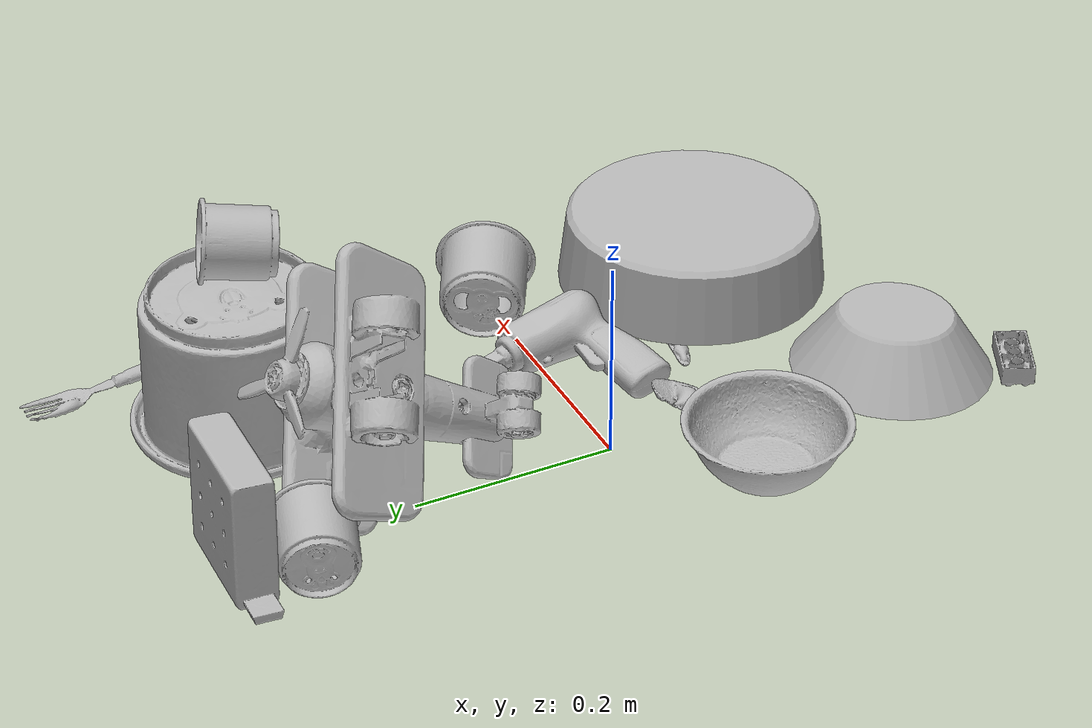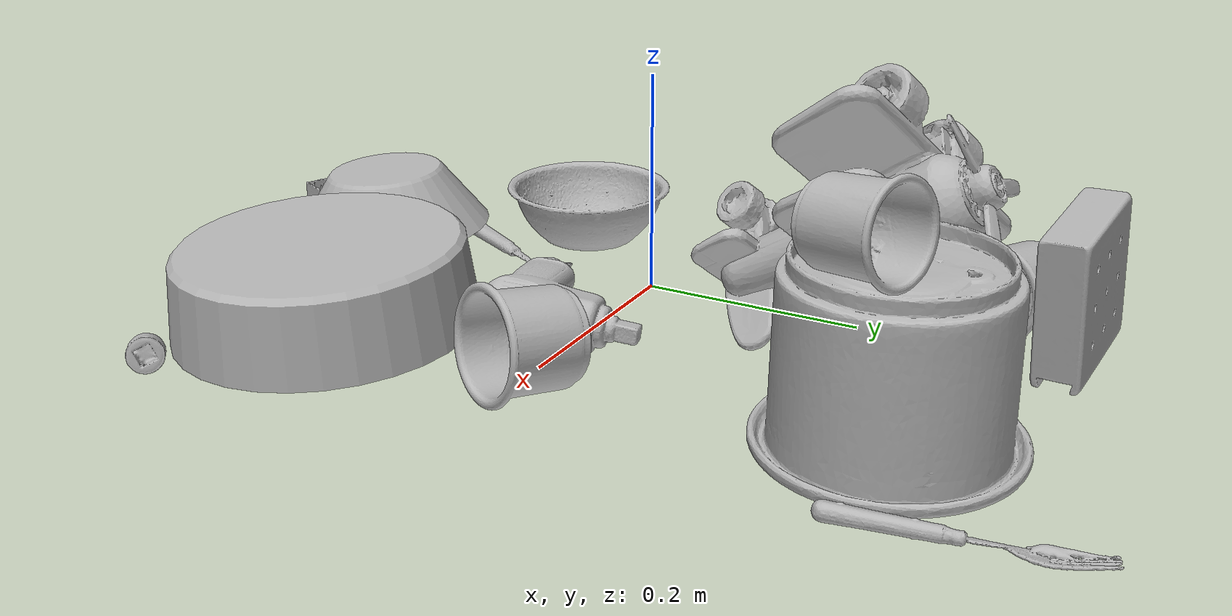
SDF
<sdf version="1.4">
  <world name="default">
    <light name="light1" type="point">
      <pose>0 0 1 0 0 0</pose>
      <diffuse>3 3 3 1</diffuse>
      <specular>3 3 3 1</specular>
    </light>
    <light name="light2" type="point">
      <pose>0 0.5 2 0 0 0</pose>
      <diffuse>1 1 1 1</diffuse>
      <specular>1 1 1 1</specular>
    </light>
    <light name="light3" type="point">
      <pose>0 0.5 2 0 0 0</pose>
      <diffuse>3 3 3 1</diffuse>
      <specular>3 3 3 1</specular>
    </light>
    <scene>
      <ambient>0.7 0.7 0.7</ambient>
    </scene>
    <model name="plate1">
      <link name="link_plate1">
        <collision name="default">
          <geometry>
            <mesh>
              <uri>model://pan_tefal/collision_meshes/collision.obj</uri>
              <scale>1.0 1.0 1.0</scale>
            </mesh>
          </geometry>
          <surface>
            <friction>
              <ode>
                <mu>0.5</mu>
                <mu2>0.5</mu2>
              </ode>
            </friction>
          <contact>
        <ode>
            <max_vel>0</max_vel>
            <min_depth>0.0001</min_depth>
            <kp>1e8</kp>
        </ode>
    </contact></surface>
        </collision>
        <visual name="default">
          <geometry>
            <mesh>
              <uri>model://pan_tefal/visual_meshes/visual.dae</uri>
              <scale>1.0 1.0 1.0</scale>
            </mesh>
          </geometry>
        </visual>
        <inertial>
          <mass>1.2414644956588745</mass>
          <pose>-0.0001800298341549933 3.278589065303095e-05 -0.00851493515074253 0.0008190165640447202 -0.0003301348973125405 -0.33185319573483557</pose>
          <inertia>
            <ixx>0.00856977</ixx>
            <iyy>0.008625018</iyy>
            <izz>0.015775295</izz>
            <ixy>0</ixy>
            <ixz>0</ixz>
            <iyz>0</iyz>
          </inertia>
        </inertial>
      </link>
      <pose>0.21910400688648224 -0.20257362723350525 0.04367988184094429 -3.1163582823512517 -0.03794121906223264 1.908701994379194</pose>
    </model>
    <model name="cup1">
      <link name="link_cup1">
        <collision name="default">
          <geometry>
            <mesh>
              <uri>model://j_cups/collision_meshes/collision.obj</uri>
              <scale>2.0 2.0 2.0</scale>
            </mesh>
          </geometry>
          <surface>
            <friction>
              <ode>
                <mu>0.5</mu>
                <mu2>0.5</mu2>
              </ode>
            </friction>
          <contact>
        <ode>
            <max_vel>0</max_vel>
            <min_depth>0.0001</min_depth>
            <kp>1e8</kp>
        </ode>
    </contact></surface>
        </collision>
        <visual name="default">
          <geometry>
            <mesh>
              <uri>model://j_cups/visual_meshes/visual.dae</uri>
              <scale>2.0 2.0 2.0</scale>
            </mesh>
          </geometry>
        </visual>
        <inertial>
          <mass>0.42814481258392334</mass>
          <pose>0.0012329709716141224 0.0010797895956784487 -0.002695801667869091 0.030303634199985552 0.037580068488308346 0.43868666904956827</pose>
          <inertia>
            <ixx>0.0025146077</ixx>
            <iyy>0.0025407567</iyy>
            <izz>0.0028988216</izz>
            <ixy>0</ixy>
            <ixz>0</ixz>
            <iyz>0</iyz>
          </inertia>
        </inertial>
      </link>
      <pose>0.1942874938249588 0.2934507727622986 0.07599557191133499 -3.1398457345140076 0.006370895939479601 1.2963266036211027</pose>
    </model>
    <model name="silverware1">
      <link name="link_silverware1">
        <collision name="default">
          <geometry>
            <mesh>
              <uri>model://fork/collision_meshes/collision.obj</uri>
              <scale>1.0 1.0 1.0</scale>
            </mesh>
          </geometry>
          <surface>
            <friction>
              <ode>
                <mu>0.5</mu>
                <mu2>0.5</mu2>
              </ode>
            </friction>
          <contact>
        <ode>
            <max_vel>0</max_vel>
            <min_depth>0.0001</min_depth>
            <kp>1e8</kp>
        </ode>
    </contact></surface>
        </collision>
        <visual name="default">
          <geometry>
            <mesh>
              <uri>model://fork/visual_meshes/visual.dae</uri>
              <scale>1.0 1.0 1.0</scale>
            </mesh>
          </geometry>
        </visual>
        <inertial>
          <mass>0.013809523545205593</mass>
          <pose>-0.029570044949650764 0.0004658822435885668 0.00032188615296036005 -0.013551743215227608 -0.010977837587661193 0.014453899243146438</pose>
          <inertia>
            <ixx>4.84102e-07</ixx>
            <iyy>3.6052697e-05</iyy>
            <izz>3.6269223e-05</izz>
            <ixy>0</ixy>
            <ixz>0</ixz>
            <iyz>0</iyz>
          </inertia>
        </inertial>
      </link>
      <pose>0.2978505492210388 0.37737345695495605 0.005694083869457245 -0.17658926670158825 0.025584761891198883 1.7036777321694945</pose>
    </model>
    <model name="silverware2">
      <link name="link_silverware2">
        <collision name="default">
          <geometry>
            <mesh>
              <uri>model://knife/collision_meshes/collision.obj</uri>
              <scale>1.0 1.0 1.0</scale>
            </mesh>
          </geometry>
          <surface>
            <friction>
              <ode>
                <mu>0.5</mu>
                <mu2>0.5</mu2>
              </ode>
            </friction>
          <contact>
        <ode>
            <max_vel>0</max_vel>
            <min_depth>0.0001</min_depth>
            <kp>1e8</kp>
        </ode>
    </contact></surface>
        </collision>
        <visual name="default">
          <geometry>
            <mesh>
              <uri>model://knife/visual_meshes/visual.dae</uri>
              <scale>1.0 1.0 1.0</scale>
            </mesh>
          </geometry>
        </visual>
        <inertial>
          <mass>0.021972408518195152</mass>
          <pose>-0.023785250261425972 0.0015275123296305537 5.0620161346159875e-05 0.07305788583029697 0.01724841890740089 -0.007409824444555058</pose>
          <inertia>
            <ixx>6.2366604e-07</ixx>
            <iyy>8.441444e-05</iyy>
            <izz>8.46153e-05</izz>
            <ixy>0</ixy>
            <ixz>0</ixz>
            <iyz>0</iyz>
          </inertia>
        </inertial>
      </link>
      <pose>0.1928955316543579 -0.14246587455272675 0.005910578649491072 3.0347365754510487 0.042407680622326104 3.023362852752673</pose>
    </model>
    <model name="silverware3">
      <link name="link_silverware3">
        <collision name="default">
          <geometry>
            <mesh>
              <uri>model://spoon/collision_meshes/collision.obj</uri>
              <scale>1.0 1.0 1.0</scale>
            </mesh>
          </geometry>
          <surface>
            <friction>
              <ode>
                <mu>0.5</mu>
                <mu2>0.5</mu2>
              </ode>
            </friction>
          <contact>
        <ode>
            <max_vel>0</max_vel>
            <min_depth>0.0001</min_depth>
            <kp>1e8</kp>
        </ode>
    </contact></surface>
        </collision>
        <visual name="default">
          <geometry>
            <mesh>
              <uri>model://spoon/visual_meshes/visual.dae</uri>
              <scale>1.0 1.0 1.0</scale>
            </mesh>
          </geometry>
        </visual>
        <inertial>
          <mass>0.026694269850850105</mass>
          <pose>-0.005526325199753046 -0.0016034168656915426 -0.0007271653739735484 0.035216710718480135 -0.03906584501417282 0.00615060951780049</pose>
          <inertia>
            <ixx>1.484779e-06</ixx>
            <iyy>0.000101570804</iyy>
            <izz>0.000102303035</izz>
            <ixy>0</ixy>
            <ixz>0</ixz>
            <iyz>0</iyz>
          </inertia>
        </inertial>
      </link>
      <pose>-0.0023481103125959635 -0.1494419127702713 0.009312869049608707 -0.0494391319844689 -0.0032141541378680567 1.0580303485822864</pose>
    </model>
    <model name="cup3">
      <link name="link_cup3">
        <collision name="default">
          <geometry>
            <mesh>
              <uri>model://f_cups/collision_meshes/collision.obj</uri>
              <scale>1.0 1.0 1.0</scale>
            </mesh>
          </geometry>
          <surface>
            <friction>
              <ode>
                <mu>0.5</mu>
                <mu2>0.5</mu2>
              </ode>
            </friction>
          <contact>
        <ode>
            <max_vel>0</max_vel>
            <min_depth>0.0001</min_depth>
            <kp>1e8</kp>
        </ode>
    </contact></surface>
        </collision>
        <visual name="default">
          <geometry>
            <mesh>
              <uri>model://f_cups/visual_meshes/visual.dae</uri>
              <scale>1.0 1.0 1.0</scale>
            </mesh>
          </geometry>
        </visual>
        <inertial>
          <mass>0.09255705773830414</mass>
          <pose>-0.0031714672222733498 -0.0006240062648430467 -0.0036555363330990076 0.7862294428046025 -0.26079256257201844 -0.18237393521905715</pose>
          <inertia>
            <ixx>8.700612e-05</ixx>
            <iyy>9.127041e-05</iyy>
            <izz>9.501506e-05</izz>
            <ixy>0</ixy>
            <ixz>0</ixz>
            <iyz>0</iyz>
          </inertia>
        </inertial>
      </link>
      <pose>0.22517913579940796 0.273359477519989 0.17736318707466125 1.4029050426831406 0.866865937047034 2.6782012209344677</pose>
    </model>
    <model name="cup4">
      <link name="link_cup4">
        <collision name="default">
          <geometry>
            <mesh>
              <uri>model://g_cups/collision_meshes/collision.obj</uri>
              <scale>1.0 1.0 1.0</scale>
            </mesh>
          </geometry>
          <surface>
            <friction>
              <ode>
                <mu>0.5</mu>
                <mu2>0.5</mu2>
              </ode>
            </friction>
          <contact>
        <ode>
            <max_vel>0</max_vel>
            <min_depth>0.0001</min_depth>
            <kp>1e8</kp>
        </ode>
    </contact></surface>
        </collision>
        <visual name="default">
          <geometry>
            <mesh>
              <uri>model://g_cups/visual_meshes/visual.dae</uri>
              <scale>1.0 1.0 1.0</scale>
            </mesh>
          </geometry>
        </visual>
        <inertial>
          <mass>0.09045539051294327</mass>
          <pose>-0.0007946272380650043 -4.206356970826164e-05 -0.0021329366136342287 -0.21382427470227655 -0.31410603394020525 0.31120189460551634</pose>
          <inertia>
            <ixx>0.000105581705</ixx>
            <iyy>0.000105222556</iyy>
            <izz>0.000109364446</izz>
            <ixy>0</ixy>
            <ixz>0</ixz>
            <iyz>0</iyz>
          </inertia>
        </inertial>
      </link>
      <pose>-0.05535192787647247 0.3200717270374298 0.040094491094350815 1.4602372689237135 0.17321632042055105 1.2354678783515012</pose>
    </model>
    <model name="cup5">
      <link name="link_cup5">
        <collision name="default">
          <geometry>
            <mesh>
              <uri>model://i_cups/collision_meshes/collision.obj</uri>
              <scale>1.0 1.0 1.0</scale>
            </mesh>
          </geometry>
          <surface>
            <friction>
              <ode>
                <mu>0.5</mu>
                <mu2>0.5</mu2>
              </ode>
            </friction>
          <contact>
        <ode>
            <max_vel>0</max_vel>
            <min_depth>0.0001</min_depth>
            <kp>1e8</kp>
        </ode>
    </contact></surface>
        </collision>
        <visual name="default">
          <geometry>
            <mesh>
              <uri>model://i_cups/visual_meshes/visual.dae</uri>
              <scale>1.0 1.0 1.0</scale>
            </mesh>
          </geometry>
        </visual>
        <inertial>
          <mass>0.0815454050898552</mass>
          <pose>0.0001123997790273279 0.00016797320859041065 -0.0008579009445384145 -0.02898318353055437 -0.03987301779891007 -0.3459082462056558</pose>
          <inertia>
            <ixx>0.0001129008</ixx>
            <iyy>0.000113895556</iyy>
            <izz>0.00012618494</izz>
            <ixy>0</ixy>
            <ixz>0</ixz>
            <iyz>0</iyz>
          </inertia>
        </inertial>
      </link>
      <pose>0.24331466853618622 0.014719491824507713 0.04477902874350548 1.4454660341002847 0.21140831497668677 1.0430210190088554</pose>
    </model>
    <model name="bowl1">
      <link name="link_bowl1">
        <collision name="default">
          <geometry>
            <mesh>
              <uri>model://bowl/collision_meshes/collision.obj</uri>
              <scale>1.0 1.0 1.0</scale>
            </mesh>
          </geometry>
          <surface>
            <friction>
              <ode>
                <mu>0.5</mu>
                <mu2>0.5</mu2>
              </ode>
            </friction>
          <contact>
        <ode>
            <max_vel>0</max_vel>
            <min_depth>0.0001</min_depth>
            <kp>1e8</kp>
        </ode>
    </contact></surface>
        </collision>
        <visual name="default">
          <geometry>
            <mesh>
              <uri>model://bowl/visual_meshes/visual.dae</uri>
              <scale>1.0 1.0 1.0</scale>
            </mesh>
          </geometry>
        </visual>
        <inertial>
          <mass>0.1349102407693863</mass>
          <pose>0.00020445192058105022 -0.0010302069131284952 -0.0008042648551054299 -0.01576408127006171 0.01454679335072616 0.7140405111038781</pose>
          <inertia>
            <ixx>0.00030989948</ixx>
            <iyy>0.00030297515</iyy>
            <izz>0.0005213576</izz>
            <ixy>0</ixy>
            <ixz>0</ixz>
            <iyz>0</iyz>
          </inertia>
        </inertial>
      </link>
      <pose>-0.08814985305070877 -0.11657943576574326 0.027780000120401382 -5.574586081635871e-08 6.245543890391424e-08 0.9562447071967848</pose>
    </model>
    <model name="bowl2">
      <link name="link_bowl2">
        <collision name="default">
          <geometry>
            <mesh>
              <uri>model://bowl_a/collision_meshes/collision.obj</uri>
              <scale>1.0 1.0 1.0</scale>
            </mesh>
          </geometry>
          <surface>
            <friction>
              <ode>
                <mu>0.5</mu>
                <mu2>0.5</mu2>
              </ode>
            </friction>
          <contact>
        <ode>
            <max_vel>0</max_vel>
            <min_depth>0.0001</min_depth>
            <kp>1e8</kp>
        </ode>
    </contact></surface>
        </collision>
        <visual name="default">
          <geometry>
            <mesh>
              <uri>model://bowl_a/visual_meshes/visual.dae</uri>
              <scale>1.0 1.0 1.0</scale>
            </mesh>
          </geometry>
        </visual>
        <inertial>
          <mass>0.4816342294216156</mass>
          <pose>0.000278677063761279 4.73155923828017e-05 -0.0013765296898782253 -0.0009805427744981278 -0.0010938171301827632 -0.19123023792191385</pose>
          <inertia>
            <ixx>0.0013712347</ixx>
            <iyy>0.0013796532</iyy>
            <izz>0.0024387941</izz>
            <ixy>0</ixy>
            <ixz>0</ixz>
            <iyz>0</iyz>
          </inertia>
        </inertial>
      </link>
      <pose>-0.0044829645194113255 -0.30147868394851685 0.03654060140252113 3.0945236160124563 -0.05317224947393041 2.7772545236733888</pose>
    </model>
    <model name="toy1">
      <link name="link_toy1">
        <collision name="default">
          <geometry>
            <mesh>
              <uri>model://a_toy_airplane/collision_meshes/collision.obj</uri>
              <scale>1.0 1.0 1.0</scale>
            </mesh>
          </geometry>
          <surface>
            <friction>
              <ode>
                <mu>0.5</mu>
                <mu2>0.5</mu2>
              </ode>
            </friction>
          <contact>
        <ode>
            <max_vel>0</max_vel>
            <min_depth>0.0001</min_depth>
            <kp>1e8</kp>
        </ode>
    </contact></surface>
        </collision>
        <visual name="default">
          <geometry>
            <mesh>
              <uri>model://a_toy_airplane/visual_meshes/visual.dae</uri>
              <scale>1.0 1.0 1.0</scale>
            </mesh>
          </geometry>
        </visual>
        <inertial>
          <mass>1.6936675310134888</mass>
          <pose>0.025165095925331116 -0.0037073225248605013 -0.0011962444987148046 -0.01201699252327453 -0.146634996228158 0.004149091382990828</pose>
          <inertia>
            <ixx>0.0061505185</ixx>
            <iyy>0.008962553</iyy>
            <izz>0.010494047</izz>
            <ixy>0</ixy>
            <ixz>0</ixz>
            <iyz>0</iyz>
          </inertia>
        </inertial>
      </link>
      <pose>0.036527954041957855 0.20027294754981995 0.1005706638097763 2.248067636369407 -0.6216675574985147 1.7392398199009331</pose>
    </model>
    <model name="toy2">
      <link name="link_toy2">
        <collision name="default">
          <geometry>
            <mesh>
              <uri>model://c_lego_duplo/collision_meshes/collision.obj</uri>
              <scale>1.0 1.0 1.0</scale>
            </mesh>
          </geometry>
          <surface>
            <friction>
              <ode>
                <mu>0.5</mu>
                <mu2>0.5</mu2>
              </ode>
            </friction>
          <contact>
        <ode>
            <max_vel>0</max_vel>
            <min_depth>0.0001</min_depth>
            <kp>1e8</kp>
        </ode>
    </contact></surface>
        </collision>
        <visual name="default">
          <geometry>
            <mesh>
              <uri>model://c_lego_duplo/visual_meshes/visual.dae</uri>
              <scale>1.0 1.0 1.0</scale>
            </mesh>
          </geometry>
        </visual>
        <inertial>
          <mass>0.01636073924601078</mass>
          <pose>0.000316459103487432 0.0001946457487065345 0.001045315177179873 -0.01152079658800189 0.005900071110555828 0.03110036538654021</pose>
          <inertia>
            <ixx>6.295917e-06</ixx>
            <iyy>2.0111436e-06</iyy>
            <izz>7.357428e-06</izz>
            <ixy>0</ixy>
            <ixz>0</ixz>
            <iyz>0</iyz>
          </inertia>
        </inertial>
      </link>
      <pose>-0.055407240986824036 -0.40655526518821716 0.011916648596525192 -3.1350919338599823 -0.000358981037340657 1.1768890139840846</pose>
    </model>
    <model name="toy3">
      <link name="link_toy3">
        <collision name="default">
          <geometry>
            <mesh>
              <uri>model://nine_hole_peg_test/collision_meshes/collision.obj</uri>
              <scale>1.0 1.0 1.0</scale>
            </mesh>
          </geometry>
          <surface>
            <friction>
              <ode>
                <mu>0.5</mu>
                <mu2>0.5</mu2>
              </ode>
            </friction>
          <contact>
        <ode>
            <max_vel>0</max_vel>
            <min_depth>0.0001</min_depth>
            <kp>1e8</kp>
        </ode>
    </contact></surface>
        </collision>
        <visual name="default">
          <geometry>
            <mesh>
              <uri>model://nine_hole_peg_test/visual_meshes/visual.dae</uri>
              <scale>1.0 1.0 1.0</scale>
            </mesh>
          </geometry>
        </visual>
        <inertial>
          <mass>0.9464474320411682</mass>
          <pose>-0.004617386497557163 -0.009647613391280174 2.646068787726108e-05 -0.0014666793204268175 0.0007194166079670136 -0.6342420609245715</pose>
          <inertia>
            <ixx>0.0014799263</ixx>
            <iyy>0.0013817915</iyy>
            <izz>0.002593267</izz>
            <ixy>0</ixy>
            <ixz>0</ixz>
            <iyz>0</iyz>
          </inertia>
        </inertial>
      </link>
      <pose>-0.02385789155960083 0.3814241886138916 0.06272094696760178 1.1987738969011228 1.4951687988158946 2.705693894020562</pose>
    </model>
    <model name="toy4">
      <link name="link_toy4">
        <collision name="default">
          <geometry>
            <mesh>
              <uri>model://d_toy_airplane/collision_meshes/collision.obj</uri>
              <scale>1.0 1.0 1.0</scale>
            </mesh>
          </geometry>
          <surface>
            <friction>
              <ode>
                <mu>0.5</mu>
                <mu2>0.5</mu2>
              </ode>
            </friction>
          <contact>
        <ode>
            <max_vel>0</max_vel>
            <min_depth>0.0001</min_depth>
            <kp>1e8</kp>
        </ode>
    </contact></surface>
        </collision>
        <visual name="default">
          <geometry>
            <mesh>
              <uri>model://d_toy_airplane/visual_meshes/visual.dae</uri>
              <scale>1.0 1.0 1.0</scale>
            </mesh>
          </geometry>
        </visual>
        <inertial>
          <mass>0.021776849403977394</mass>
          <pose>9.410295024281368e-05 -5.809321373817511e-05 -0.011728097684681416 0.0002661671660100631 0.004679022103859929 0.519291232465637</pose>
          <inertia>
            <ixx>6.5282748e-06</ixx>
            <iyy>6.5331997e-06</iyy>
            <izz>1.9709291e-06</izz>
            <ixy>0</ixy>
            <ixz>0</ixz>
            <iyz>0</iyz>
          </inertia>
        </inertial>
      </link>
      <pose>0.3388003408908844 -0.2910764217376709 0.011361245065927505 -2.3017962435276664 1.2476185028976159 1.6268491193672883</pose>
    </model>
    <model name="toy5">
      <link name="link_toy5">
        <collision name="default">
          <geometry>
            <mesh>
              <uri>model://b_toy_airplane/collision_meshes/collision.obj</uri>
              <scale>1.0 1.0 1.0</scale>
            </mesh>
          </geometry>
          <surface>
            <friction>
              <ode>
                <mu>0.5</mu>
                <mu2>0.5</mu2>
              </ode>
            </friction>
          <contact>
        <ode>
            <max_vel>0</max_vel>
            <min_depth>0.0001</min_depth>
            <kp>1e8</kp>
        </ode>
    </contact></surface>
        </collision>
        <visual name="default">
          <geometry>
            <mesh>
              <uri>model://b_toy_airplane/visual_meshes/visual.dae</uri>
              <scale>1.0 1.0 1.0</scale>
            </mesh>
          </geometry>
        </visual>
        <inertial>
          <mass>0.25237053632736206</mass>
          <pose>0.00508136348798871 0.004015584476292133 0.00954306498169899 -0.04001808288480986 -0.0402218063825515 -0.5601503558886168</pose>
          <inertia>
            <ixx>0.00046853055</ixx>
            <iyy>0.00018727628</iyy>
            <izz>0.0005828988</izz>
            <ixy>0</ixy>
            <ixz>0</ixz>
            <iyz>0</iyz>
          </inertia>
        </inertial>
      </link>
      <pose>0.1363636553287506 -0.03649625927209854 0.035689081996679306 3.069570869868295 0.07405956606878535 1.7918280863981004</pose>
    </model>
  <physics type="ode">
      <max_contacts>50</max_contacts>
      <ode>
        <solver>
          <type>quick</type>
          <iters>75</iters>
        </solver>
        <constraints>
          <contact_max_correcting_vel>0</contact_max_correcting_vel>
          <contact_surface_layer>0</contact_surface_layer>
        </constraints>
      </ode>
    </physics></world>
</sdf>
